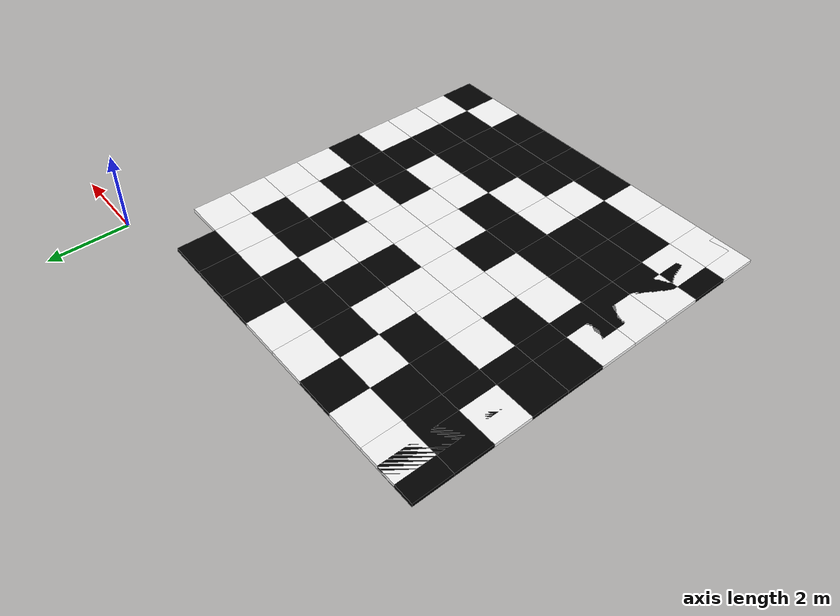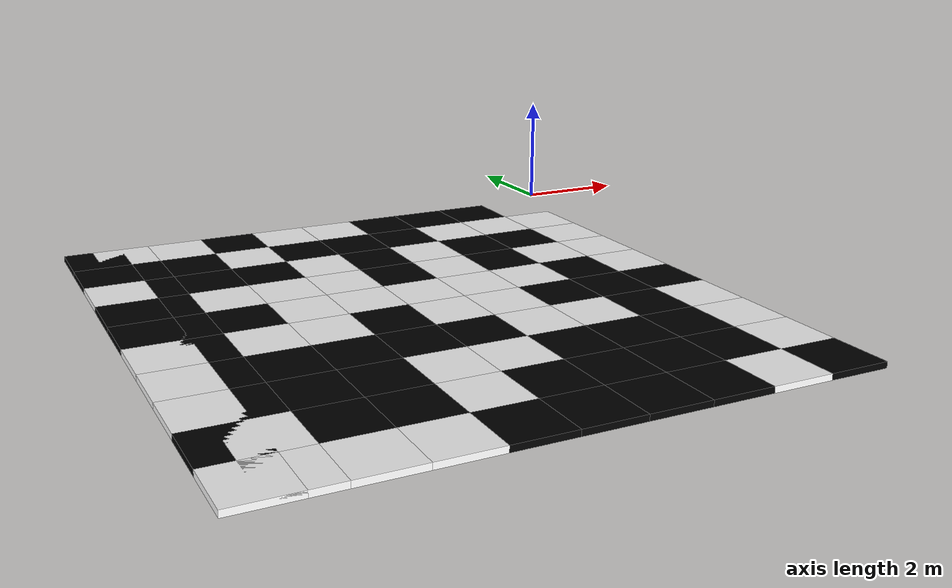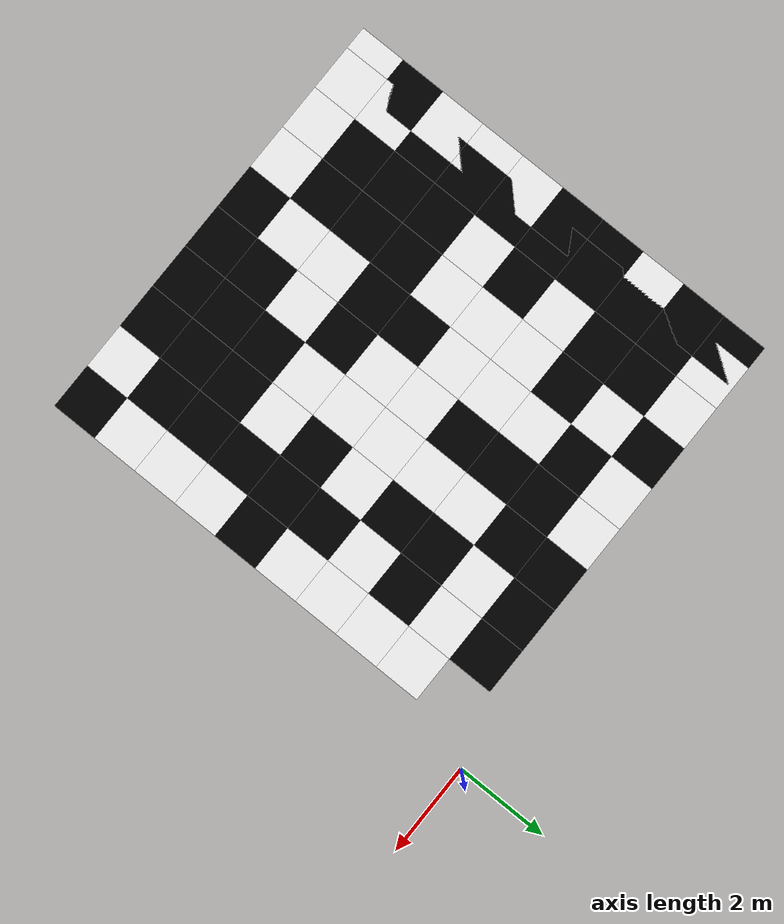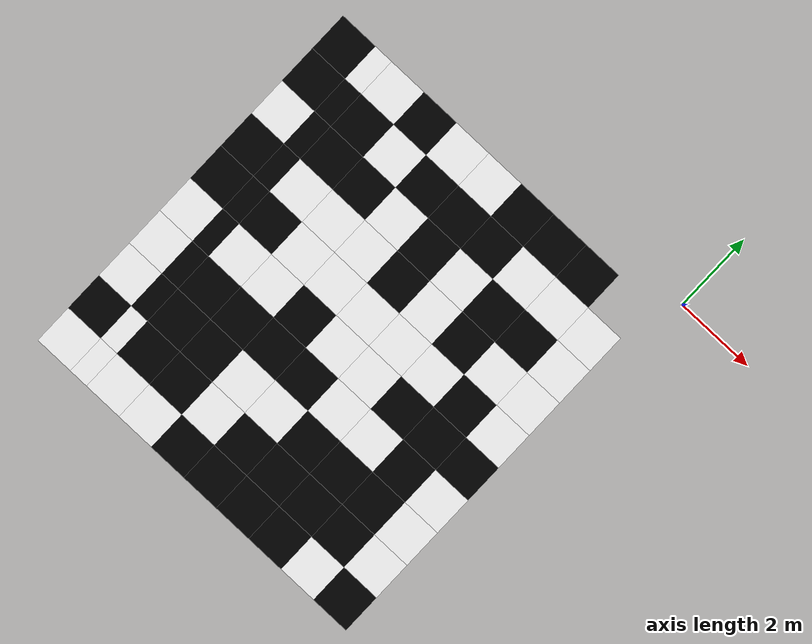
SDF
<sdf version="1.8">
 <world name="collective_perception_task_world">
  <model name="tile_-10_-10">
   <is_static>true</is_static>
   <pose>-9.5 -10 0 0 0 0</pose>
   <link name="link">
    <collision name="collision"><geometry><box><size>1 1 0.1</size></box></geometry></collision>
    <visual name="visual">
     <geometry><box><size>1 1 0.1</size></box></geometry>
     <material><ambient>1 1 1 1</ambient><diffuse>1 1 1 1</diffuse></material>
    </visual>
   </link>
  </model>
  <model name="tile_-10_-9">
   <is_static>true</is_static>
   <pose>-9.5 -9 0 0 0 0</pose>
   <link name="link">
    <collision name="collision"><geometry><box><size>1 1 0.1</size></box></geometry></collision>
    <visual name="visual">
     <geometry><box><size>1 1 0.1</size></box></geometry>
     <material><ambient>0 0 0 1</ambient><diffuse>0 0 0 1</diffuse></material>
    </visual>
   </link>
  </model>
  <model name="tile_-10_-8">
   <is_static>true</is_static>
   <pose>-9.5 -8 0 0 0 0</pose>
   <link name="link">
    <collision name="collision"><geometry><box><size>1 1 0.1</size></box></geometry></collision>
    <visual name="visual">
     <geometry><box><size>1 1 0.1</size></box></geometry>
     <material><ambient>1 1 1 1</ambient><diffuse>1 1 1 1</diffuse></material>
    </visual>
   </link>
  </model>
  <model name="tile_-10_-7">
   <is_static>true</is_static>
   <pose>-9.5 -7 0 0 0 0</pose>
   <link name="link">
    <collision name="collision"><geometry><box><size>1 1 0.1</size></box></geometry></collision>
    <visual name="visual">
     <geometry><box><size>1 1 0.1</size></box></geometry>
     <material><ambient>1 1 1 1</ambient><diffuse>1 1 1 1</diffuse></material>
    </visual>
   </link>
  </model>
  <model name="tile_-10_-6">
   <is_static>true</is_static>
   <pose>-9.5 -6 0 0 0 0</pose>
   <link name="link">
    <collision name="collision"><geometry><box><size>1 1 0.1</size></box></geometry></collision>
    <visual name="visual">
     <geometry><box><size>1 1 0.1</size></box></geometry>
     <material><ambient>1 1 1 1</ambient><diffuse>1 1 1 1</diffuse></material>
    </visual>
   </link>
  </model>
  <model name="tile_-10_-5">
   <is_static>true</is_static>
   <pose>-9.5 -5 0 0 0 0</pose>
   <link name="link">
    <collision name="collision"><geometry><box><size>1 1 0.1</size></box></geometry></collision>
    <visual name="visual">
     <geometry><box><size>1 1 0.1</size></box></geometry>
     <material><ambient>0 0 0 1</ambient><diffuse>0 0 0 1</diffuse></material>
    </visual>
   </link>
  </model>
  <model name="tile_-10_-4">
   <is_static>true</is_static>
   <pose>-9.5 -4 0 0 0 0</pose>
   <link name="link">
    <collision name="collision"><geometry><box><size>1 1 0.1</size></box></geometry></collision>
    <visual name="visual">
     <geometry><box><size>1 1 0.1</size></box></geometry>
     <material><ambient>0 0 0 1</ambient><diffuse>0 0 0 1</diffuse></material>
    </visual>
   </link>
  </model>
  <model name="tile_-10_-3">
   <is_static>true</is_static>
   <pose>-9.5 -3 0 0 0 0</pose>
   <link name="link">
    <collision name="collision"><geometry><box><size>1 1 0.1</size></box></geometry></collision>
    <visual name="visual">
     <geometry><box><size>1 1 0.1</size></box></geometry>
     <material><ambient>1 1 1 1</ambient><diffuse>1 1 1 1</diffuse></material>
    </visual>
   </link>
  </model>
  <model name="tile_-10_-2">
   <is_static>true</is_static>
   <pose>-9.5 -2 0 0 0 0</pose>
   <link name="link">
    <collision name="collision"><geometry><box><size>1 1 0.1</size></box></geometry></collision>
    <visual name="visual">
     <geometry><box><size>1 1 0.1</size></box></geometry>
     <material><ambient>0 0 0 1</ambient><diffuse>0 0 0 1</diffuse></material>
    </visual>
   </link>
  </model>
  <model name="tile_-10_-1">
   <is_static>true</is_static>
   <pose>-9.5 -1 0 0 0 0</pose>
   <link name="link">
    <collision name="collision"><geometry><box><size>1 1 0.1</size></box></geometry></collision>
    <visual name="visual">
     <geometry><box><size>1 1 0.1</size></box></geometry>
     <material><ambient>0 0 0 1</ambient><diffuse>0 0 0 1</diffuse></material>
    </visual>
   </link>
  </model>
  <model name="tile_-9_-10">
   <is_static>true</is_static>
   <pose>-9 -10 0 0 0 0</pose>
   <link name="link">
    <collision name="collision"><geometry><box><size>1 1 0.1</size></box></geometry></collision>
    <visual name="visual">
     <geometry><box><size>1 1 0.1</size></box></geometry>
     <material><ambient>1 1 1 1</ambient><diffuse>1 1 1 1</diffuse></material>
    </visual>
   </link>
  </model>
  <model name="tile_-9_-9">
   <is_static>true</is_static>
   <pose>-9 -9 0 0 0 0</pose>
   <link name="link">
    <collision name="collision"><geometry><box><size>1 1 0.1</size></box></geometry></collision>
    <visual name="visual">
     <geometry><box><size>1 1 0.1</size></box></geometry>
     <material><ambient>1 1 1 1</ambient><diffuse>1 1 1 1</diffuse></material>
    </visual>
   </link>
  </model>
  <model name="tile_-9_-8">
   <is_static>true</is_static>
   <pose>-9 -8 0 0 0 0</pose>
   <link name="link">
    <collision name="collision"><geometry><box><size>1 1 0.1</size></box></geometry></collision>
    <visual name="visual">
     <geometry><box><size>1 1 0.1</size></box></geometry>
     <material><ambient>0 0 0 1</ambient><diffuse>0 0 0 1</diffuse></material>
    </visual>
   </link>
  </model>
  <model name="tile_-9_-7">
   <is_static>true</is_static>
   <pose>-9 -7 0 0 0 0</pose>
   <link name="link">
    <collision name="collision"><geometry><box><size>1 1 0.1</size></box></geometry></collision>
    <visual name="visual">
     <geometry><box><size>1 1 0.1</size></box></geometry>
     <material><ambient>0 0 0 1</ambient><diffuse>0 0 0 1</diffuse></material>
    </visual>
   </link>
  </model>
  <model name="tile_-9_-6">
   <is_static>true</is_static>
   <pose>-9 -6 0 0 0 0</pose>
   <link name="link">
    <collision name="collision"><geometry><box><size>1 1 0.1</size></box></geometry></collision>
    <visual name="visual">
     <geometry><box><size>1 1 0.1</size></box></geometry>
     <material><ambient>0 0 0 1</ambient><diffuse>0 0 0 1</diffuse></material>
    </visual>
   </link>
  </model>
  <model name="tile_-9_-5">
   <is_static>true</is_static>
   <pose>-9 -5 0 0 0 0</pose>
   <link name="link">
    <collision name="collision"><geometry><box><size>1 1 0.1</size></box></geometry></collision>
    <visual name="visual">
     <geometry><box><size>1 1 0.1</size></box></geometry>
     <material><ambient>0 0 0 1</ambient><diffuse>0 0 0 1</diffuse></material>
    </visual>
   </link>
  </model>
  <model name="tile_-9_-4">
   <is_static>true</is_static>
   <pose>-9 -4 0 0 0 0</pose>
   <link name="link">
    <collision name="collision"><geometry><box><size>1 1 0.1</size></box></geometry></collision>
    <visual name="visual">
     <geometry><box><size>1 1 0.1</size></box></geometry>
     <material><ambient>0 0 0 1</ambient><diffuse>0 0 0 1</diffuse></material>
    </visual>
   </link>
  </model>
  <model name="tile_-9_-3">
   <is_static>true</is_static>
   <pose>-9 -3 0 0 0 0</pose>
   <link name="link">
    <collision name="collision"><geometry><box><size>1 1 0.1</size></box></geometry></collision>
    <visual name="visual">
     <geometry><box><size>1 1 0.1</size></box></geometry>
     <material><ambient>0 0 0 1</ambient><diffuse>0 0 0 1</diffuse></material>
    </visual>
   </link>
  </model>
  <model name="tile_-9_-2">
   <is_static>true</is_static>
   <pose>-9 -2 0 0 0 0</pose>
   <link name="link">
    <collision name="collision"><geometry><box><size>1 1 0.1</size></box></geometry></collision>
    <visual name="visual">
     <geometry><box><size>1 1 0.1</size></box></geometry>
     <material><ambient>0 0 0 1</ambient><diffuse>0 0 0 1</diffuse></material>
    </visual>
   </link>
  </model>
  <model name="tile_-9_-1">
   <is_static>true</is_static>
   <pose>-9 -1 0 0 0 0</pose>
   <link name="link">
    <collision name="collision"><geometry><box><size>1 1 0.1</size></box></geometry></collision>
    <visual name="visual">
     <geometry><box><size>1 1 0.1</size></box></geometry>
     <material><ambient>1 1 1 1</ambient><diffuse>1 1 1 1</diffuse></material>
    </visual>
   </link>
  </model>
  <model name="tile_-8_-10">
   <is_static>true</is_static>
   <pose>-8 -10 0 0 0 0</pose>
   <link name="link">
    <collision name="collision"><geometry><box><size>1 1 0.1</size></box></geometry></collision>
    <visual name="visual">
     <geometry><box><size>1 1 0.1</size></box></geometry>
     <material><ambient>1 1 1 1</ambient><diffuse>1 1 1 1</diffuse></material>
    </visual>
   </link>
  </model>
  <model name="tile_-8_-9">
   <is_static>true</is_static>
   <pose>-8 -9 0 0 0 0</pose>
   <link name="link">
    <collision name="collision"><geometry><box><size>1 1 0.1</size></box></geometry></collision>
    <visual name="visual">
     <geometry><box><size>1 1 0.1</size></box></geometry>
     <material><ambient>0 0 0 1</ambient><diffuse>0 0 0 1</diffuse></material>
    </visual>
   </link>
  </model>
  <model name="tile_-8_-8">
   <is_static>true</is_static>
   <pose>-8 -8 0 0 0 0</pose>
   <link name="link">
    <collision name="collision"><geometry><box><size>1 1 0.1</size></box></geometry></collision>
    <visual name="visual">
     <geometry><box><size>1 1 0.1</size></box></geometry>
     <material><ambient>0 0 0 1</ambient><diffuse>0 0 0 1</diffuse></material>
    </visual>
   </link>
  </model>
  <model name="tile_-8_-7">
   <is_static>true</is_static>
   <pose>-8 -7 0 0 0 0</pose>
   <link name="link">
    <collision name="collision"><geometry><box><size>1 1 0.1</size></box></geometry></collision>
    <visual name="visual">
     <geometry><box><size>1 1 0.1</size></box></geometry>
     <material><ambient>0 0 0 1</ambient><diffuse>0 0 0 1</diffuse></material>
    </visual>
   </link>
  </model>
  <model name="tile_-8_-6">
   <is_static>true</is_static>
   <pose>-8 -6 0 0 0 0</pose>
   <link name="link">
    <collision name="collision"><geometry><box><size>1 1 0.1</size></box></geometry></collision>
    <visual name="visual">
     <geometry><box><size>1 1 0.1</size></box></geometry>
     <material><ambient>1 1 1 1</ambient><diffuse>1 1 1 1</diffuse></material>
    </visual>
   </link>
  </model>
  <model name="tile_-8_-5">
   <is_static>true</is_static>
   <pose>-8 -5 0 0 0 0</pose>
   <link name="link">
    <collision name="collision"><geometry><box><size>1 1 0.1</size></box></geometry></collision>
    <visual name="visual">
     <geometry><box><size>1 1 0.1</size></box></geometry>
     <material><ambient>0 0 0 1</ambient><diffuse>0 0 0 1</diffuse></material>
    </visual>
   </link>
  </model>
  <model name="tile_-8_-4">
   <is_static>true</is_static>
   <pose>-8 -4 0 0 0 0</pose>
   <link name="link">
    <collision name="collision"><geometry><box><size>1 1 0.1</size></box></geometry></collision>
    <visual name="visual">
     <geometry><box><size>1 1 0.1</size></box></geometry>
     <material><ambient>1 1 1 1</ambient><diffuse>1 1 1 1</diffuse></material>
    </visual>
   </link>
  </model>
  <model name="tile_-8_-3">
   <is_static>true</is_static>
   <pose>-8 -3 0 0 0 0</pose>
   <link name="link">
    <collision name="collision"><geometry><box><size>1 1 0.1</size></box></geometry></collision>
    <visual name="visual">
     <geometry><box><size>1 1 0.1</size></box></geometry>
     <material><ambient>0 0 0 1</ambient><diffuse>0 0 0 1</diffuse></material>
    </visual>
   </link>
  </model>
  <model name="tile_-8_-2">
   <is_static>true</is_static>
   <pose>-8 -2 0 0 0 0</pose>
   <link name="link">
    <collision name="collision"><geometry><box><size>1 1 0.1</size></box></geometry></collision>
    <visual name="visual">
     <geometry><box><size>1 1 0.1</size></box></geometry>
     <material><ambient>0 0 0 1</ambient><diffuse>0 0 0 1</diffuse></material>
    </visual>
   </link>
  </model>
  <model name="tile_-8_-1">
   <is_static>true</is_static>
   <pose>-8 -1 0 0 0 0</pose>
   <link name="link">
    <collision name="collision"><geometry><box><size>1 1 0.1</size></box></geometry></collision>
    <visual name="visual">
     <geometry><box><size>1 1 0.1</size></box></geometry>
     <material><ambient>1 1 1 1</ambient><diffuse>1 1 1 1</diffuse></material>
    </visual>
   </link>
  </model>
  <model name="tile_-7_-10">
   <is_static>true</is_static>
   <pose>-7 -10 0 0 0 0</pose>
   <link name="link">
    <collision name="collision"><geometry><box><size>1 1 0.1</size></box></geometry></collision>
    <visual name="visual">
     <geometry><box><size>1 1 0.1</size></box></geometry>
     <material><ambient>1 1 1 1</ambient><diffuse>1 1 1 1</diffuse></material>
    </visual>
   </link>
  </model>
  <model name="tile_-7_-9">
   <is_static>true</is_static>
   <pose>-7 -9 0 0 0 0</pose>
   <link name="link">
    <collision name="collision"><geometry><box><size>1 1 0.1</size></box></geometry></collision>
    <visual name="visual">
     <geometry><box><size>1 1 0.1</size></box></geometry>
     <material><ambient>0 0 0 1</ambient><diffuse>0 0 0 1</diffuse></material>
    </visual>
   </link>
  </model>
  <model name="tile_-7_-8">
   <is_static>true</is_static>
   <pose>-7 -8 0 0 0 0</pose>
   <link name="link">
    <collision name="collision"><geometry><box><size>1 1 0.1</size></box></geometry></collision>
    <visual name="visual">
     <geometry><box><size>1 1 0.1</size></box></geometry>
     <material><ambient>0 0 0 1</ambient><diffuse>0 0 0 1</diffuse></material>
    </visual>
   </link>
  </model>
  <model name="tile_-7_-7">
   <is_static>true</is_static>
   <pose>-7 -7 0 0 0 0</pose>
   <link name="link">
    <collision name="collision"><geometry><box><size>1 1 0.1</size></box></geometry></collision>
    <visual name="visual">
     <geometry><box><size>1 1 0.1</size></box></geometry>
     <material><ambient>0 0 0 1</ambient><diffuse>0 0 0 1</diffuse></material>
    </visual>
   </link>
  </model>
  <model name="tile_-7_-6">
   <is_static>true</is_static>
   <pose>-7 -6 0 0 0 0</pose>
   <link name="link">
    <collision name="collision"><geometry><box><size>1 1 0.1</size></box></geometry></collision>
    <visual name="visual">
     <geometry><box><size>1 1 0.1</size></box></geometry>
     <material><ambient>1 1 1 1</ambient><diffuse>1 1 1 1</diffuse></material>
    </visual>
   </link>
  </model>
  <model name="tile_-7_-5">
   <is_static>true</is_static>
   <pose>-7 -5 0 0 0 0</pose>
   <link name="link">
    <collision name="collision"><geometry><box><size>1 1 0.1</size></box></geometry></collision>
    <visual name="visual">
     <geometry><box><size>1 1 0.1</size></box></geometry>
     <material><ambient>1 1 1 1</ambient><diffuse>1 1 1 1</diffuse></material>
    </visual>
   </link>
  </model>
  <model name="tile_-7_-4">
   <is_static>true</is_static>
   <pose>-7 -4 0 0 0 0</pose>
   <link name="link">
    <collision name="collision"><geometry><box><size>1 1 0.1</size></box></geometry></collision>
    <visual name="visual">
     <geometry><box><size>1 1 0.1</size></box></geometry>
     <material><ambient>1 1 1 1</ambient><diffuse>1 1 1 1</diffuse></material>
    </visual>
   </link>
  </model>
  <model name="tile_-7_-3">
   <is_static>true</is_static>
   <pose>-7 -3 0 0 0 0</pose>
   <link name="link">
    <collision name="collision"><geometry><box><size>1 1 0.1</size></box></geometry></collision>
    <visual name="visual">
     <geometry><box><size>1 1 0.1</size></box></geometry>
     <material><ambient>0 0 0 1</ambient><diffuse>0 0 0 1</diffuse></material>
    </visual>
   </link>
  </model>
  <model name="tile_-7_-2">
   <is_static>true</is_static>
   <pose>-7 -2 0 0 0 0</pose>
   <link name="link">
    <collision name="collision"><geometry><box><size>1 1 0.1</size></box></geometry></collision>
    <visual name="visual">
     <geometry><box><size>1 1 0.1</size></box></geometry>
     <material><ambient>1 1 1 1</ambient><diffuse>1 1 1 1</diffuse></material>
    </visual>
   </link>
  </model>
  <model name="tile_-7_-1">
   <is_static>true</is_static>
   <pose>-7 -1 0 0 0 0</pose>
   <link name="link">
    <collision name="collision"><geometry><box><size>1 1 0.1</size></box></geometry></collision>
    <visual name="visual">
     <geometry><box><size>1 1 0.1</size></box></geometry>
     <material><ambient>0 0 0 1</ambient><diffuse>0 0 0 1</diffuse></material>
    </visual>
   </link>
  </model>
  <model name="tile_-6_-10">
   <is_static>true</is_static>
   <pose>-6 -10 0 0 0 0</pose>
   <link name="link">
    <collision name="collision"><geometry><box><size>1 1 0.1</size></box></geometry></collision>
    <visual name="visual">
     <geometry><box><size>1 1 0.1</size></box></geometry>
     <material><ambient>0 0 0 1</ambient><diffuse>0 0 0 1</diffuse></material>
    </visual>
   </link>
  </model>
  <model name="tile_-6_-9">
   <is_static>true</is_static>
   <pose>-6 -9 0 0 0 0</pose>
   <link name="link">
    <collision name="collision"><geometry><box><size>1 1 0.1</size></box></geometry></collision>
    <visual name="visual">
     <geometry><box><size>1 1 0.1</size></box></geometry>
     <material><ambient>1 1 1 1</ambient><diffuse>1 1 1 1</diffuse></material>
    </visual>
   </link>
  </model>
  <model name="tile_-6_-8">
   <is_static>true</is_static>
   <pose>-6 -8 0 0 0 0</pose>
   <link name="link">
    <collision name="collision"><geometry><box><size>1 1 0.1</size></box></geometry></collision>
    <visual name="visual">
     <geometry><box><size>1 1 0.1</size></box></geometry>
     <material><ambient>1 1 1 1</ambient><diffuse>1 1 1 1</diffuse></material>
    </visual>
   </link>
  </model>
  <model name="tile_-6_-7">
   <is_static>true</is_static>
   <pose>-6 -7 0 0 0 0</pose>
   <link name="link">
    <collision name="collision"><geometry><box><size>1 1 0.1</size></box></geometry></collision>
    <visual name="visual">
     <geometry><box><size>1 1 0.1</size></box></geometry>
     <material><ambient>0 0 0 1</ambient><diffuse>0 0 0 1</diffuse></material>
    </visual>
   </link>
  </model>
  <model name="tile_-6_-6">
   <is_static>true</is_static>
   <pose>-6 -6 0 0 0 0</pose>
   <link name="link">
    <collision name="collision"><geometry><box><size>1 1 0.1</size></box></geometry></collision>
    <visual name="visual">
     <geometry><box><size>1 1 0.1</size></box></geometry>
     <material><ambient>0 0 0 1</ambient><diffuse>0 0 0 1</diffuse></material>
    </visual>
   </link>
  </model>
  <model name="tile_-6_-5">
   <is_static>true</is_static>
   <pose>-6 -5 0 0 0 0</pose>
   <link name="link">
    <collision name="collision"><geometry><box><size>1 1 0.1</size></box></geometry></collision>
    <visual name="visual">
     <geometry><box><size>1 1 0.1</size></box></geometry>
     <material><ambient>1 1 1 1</ambient><diffuse>1 1 1 1</diffuse></material>
    </visual>
   </link>
  </model>
  <model name="tile_-6_-4">
   <is_static>true</is_static>
   <pose>-6 -4 0 0 0 0</pose>
   <link name="link">
    <collision name="collision"><geometry><box><size>1 1 0.1</size></box></geometry></collision>
    <visual name="visual">
     <geometry><box><size>1 1 0.1</size></box></geometry>
     <material><ambient>1 1 1 1</ambient><diffuse>1 1 1 1</diffuse></material>
    </visual>
   </link>
  </model>
  <model name="tile_-6_-3">
   <is_static>true</is_static>
   <pose>-6 -3 0 0 0 0</pose>
   <link name="link">
    <collision name="collision"><geometry><box><size>1 1 0.1</size></box></geometry></collision>
    <visual name="visual">
     <geometry><box><size>1 1 0.1</size></box></geometry>
     <material><ambient>1 1 1 1</ambient><diffuse>1 1 1 1</diffuse></material>
    </visual>
   </link>
  </model>
  <model name="tile_-6_-2">
   <is_static>true</is_static>
   <pose>-6 -2 0 0 0 0</pose>
   <link name="link">
    <collision name="collision"><geometry><box><size>1 1 0.1</size></box></geometry></collision>
    <visual name="visual">
     <geometry><box><size>1 1 0.1</size></box></geometry>
     <material><ambient>0 0 0 1</ambient><diffuse>0 0 0 1</diffuse></material>
    </visual>
   </link>
  </model>
  <model name="tile_-6_-1">
   <is_static>true</is_static>
   <pose>-6 -1 0 0 0 0</pose>
   <link name="link">
    <collision name="collision"><geometry><box><size>1 1 0.1</size></box></geometry></collision>
    <visual name="visual">
     <geometry><box><size>1 1 0.1</size></box></geometry>
     <material><ambient>1 1 1 1</ambient><diffuse>1 1 1 1</diffuse></material>
    </visual>
   </link>
  </model>
  <model name="tile_-5_-10">
   <is_static>true</is_static>
   <pose>-5 -10 0 0 0 0</pose>
   <link name="link">
    <collision name="collision"><geometry><box><size>1 1 0.1</size></box></geometry></collision>
    <visual name="visual">
     <geometry><box><size>1 1 0.1</size></box></geometry>
     <material><ambient>0 0 0 1</ambient><diffuse>0 0 0 1</diffuse></material>
    </visual>
   </link>
  </model>
  <model name="tile_-5_-9">
   <is_static>true</is_static>
   <pose>-5 -9 0 0 0 0</pose>
   <link name="link">
    <collision name="collision"><geometry><box><size>1 1 0.1</size></box></geometry></collision>
    <visual name="visual">
     <geometry><box><size>1 1 0.1</size></box></geometry>
     <material><ambient>0 0 0 1</ambient><diffuse>0 0 0 1</diffuse></material>
    </visual>
   </link>
  </model>
  <model name="tile_-5_-8">
   <is_static>true</is_static>
   <pose>-5 -8 0 0 0 0</pose>
   <link name="link">
    <collision name="collision"><geometry><box><size>1 1 0.1</size></box></geometry></collision>
    <visual name="visual">
     <geometry><box><size>1 1 0.1</size></box></geometry>
     <material><ambient>1 1 1 1</ambient><diffuse>1 1 1 1</diffuse></material>
    </visual>
   </link>
  </model>
  <model name="tile_-5_-7">
   <is_static>true</is_static>
   <pose>-5 -7 0 0 0 0</pose>
   <link name="link">
    <collision name="collision"><geometry><box><size>1 1 0.1</size></box></geometry></collision>
    <visual name="visual">
     <geometry><box><size>1 1 0.1</size></box></geometry>
     <material><ambient>0 0 0 1</ambient><diffuse>0 0 0 1</diffuse></material>
    </visual>
   </link>
  </model>
  <model name="tile_-5_-6">
   <is_static>true</is_static>
   <pose>-5 -6 0 0 0 0</pose>
   <link name="link">
    <collision name="collision"><geometry><box><size>1 1 0.1</size></box></geometry></collision>
    <visual name="visual">
     <geometry><box><size>1 1 0.1</size></box></geometry>
     <material><ambient>1 1 1 1</ambient><diffuse>1 1 1 1</diffuse></material>
    </visual>
   </link>
  </model>
  <model name="tile_-5_-5">
   <is_static>true</is_static>
   <pose>-5 -5 0 0 0 0</pose>
   <link name="link">
    <collision name="collision"><geometry><box><size>1 1 0.1</size></box></geometry></collision>
    <visual name="visual">
     <geometry><box><size>1 1 0.1</size></box></geometry>
     <material><ambient>1 1 1 1</ambient><diffuse>1 1 1 1</diffuse></material>
    </visual>
   </link>
  </model>
  <model name="tile_-5_-4">
   <is_static>true</is_static>
   <pose>-5 -4 0 0 0 0</pose>
   <link name="link">
    <collision name="collision"><geometry><box><size>1 1 0.1</size></box></geometry></collision>
    <visual name="visual">
     <geometry><box><size>1 1 0.1</size></box></geometry>
     <material><ambient>0 0 0 1</ambient><diffuse>0 0 0 1</diffuse></material>
    </visual>
   </link>
  </model>
  <model name="tile_-5_-3">
   <is_static>true</is_static>
   <pose>-5 -3 0 0 0 0</pose>
   <link name="link">
    <collision name="collision"><geometry><box><size>1 1 0.1</size></box></geometry></collision>
    <visual name="visual">
     <geometry><box><size>1 1 0.1</size></box></geometry>
     <material><ambient>0 0 0 1</ambient><diffuse>0 0 0 1</diffuse></material>
    </visual>
   </link>
  </model>
  <model name="tile_-5_-2">
   <is_static>true</is_static>
   <pose>-5 -2 0 0 0 0</pose>
   <link name="link">
    <collision name="collision"><geometry><box><size>1 1 0.1</size></box></geometry></collision>
    <visual name="visual">
     <geometry><box><size>1 1 0.1</size></box></geometry>
     <material><ambient>0 0 0 1</ambient><diffuse>0 0 0 1</diffuse></material>
    </visual>
   </link>
  </model>
  <model name="tile_-5_-1">
   <is_static>true</is_static>
   <pose>-5 -1 0 0 0 0</pose>
   <link name="link">
    <collision name="collision"><geometry><box><size>1 1 0.1</size></box></geometry></collision>
    <visual name="visual">
     <geometry><box><size>1 1 0.1</size></box></geometry>
     <material><ambient>1 1 1 1</ambient><diffuse>1 1 1 1</diffuse></material>
    </visual>
   </link>
  </model>
  <model name="tile_-4_-10">
   <is_static>true</is_static>
   <pose>-4 -10 0 0 0 0</pose>
   <link name="link">
    <collision name="collision"><geometry><box><size>1 1 0.1</size></box></geometry></collision>
    <visual name="visual">
     <geometry><box><size>1 1 0.1</size></box></geometry>
     <material><ambient>0 0 0 1</ambient><diffuse>0 0 0 1</diffuse></material>
    </visual>
   </link>
  </model>
  <model name="tile_-4_-9">
   <is_static>true</is_static>
   <pose>-4 -9 0 0 0 0</pose>
   <link name="link">
    <collision name="collision"><geometry><box><size>1 1 0.1</size></box></geometry></collision>
    <visual name="visual">
     <geometry><box><size>1 1 0.1</size></box></geometry>
     <material><ambient>0 0 0 1</ambient><diffuse>0 0 0 1</diffuse></material>
    </visual>
   </link>
  </model>
  <model name="tile_-4_-8">
   <is_static>true</is_static>
   <pose>-4 -8 0 0 0 0</pose>
   <link name="link">
    <collision name="collision"><geometry><box><size>1 1 0.1</size></box></geometry></collision>
    <visual name="visual">
     <geometry><box><size>1 1 0.1</size></box></geometry>
     <material><ambient>0 0 0 1</ambient><diffuse>0 0 0 1</diffuse></material>
    </visual>
   </link>
  </model>
  <model name="tile_-4_-7">
   <is_static>true</is_static>
   <pose>-4 -7 0 0 0 0</pose>
   <link name="link">
    <collision name="collision"><geometry><box><size>1 1 0.1</size></box></geometry></collision>
    <visual name="visual">
     <geometry><box><size>1 1 0.1</size></box></geometry>
     <material><ambient>1 1 1 1</ambient><diffuse>1 1 1 1</diffuse></material>
    </visual>
   </link>
  </model>
  <model name="tile_-4_-6">
   <is_static>true</is_static>
   <pose>-4 -6 0 0 0 0</pose>
   <link name="link">
    <collision name="collision"><geometry><box><size>1 1 0.1</size></box></geometry></collision>
    <visual name="visual">
     <geometry><box><size>1 1 0.1</size></box></geometry>
     <material><ambient>1 1 1 1</ambient><diffuse>1 1 1 1</diffuse></material>
    </visual>
   </link>
  </model>
  <model name="tile_-4_-5">
   <is_static>true</is_static>
   <pose>-4 -5 0 0 0 0</pose>
   <link name="link">
    <collision name="collision"><geometry><box><size>1 1 0.1</size></box></geometry></collision>
    <visual name="visual">
     <geometry><box><size>1 1 0.1</size></box></geometry>
     <material><ambient>1 1 1 1</ambient><diffuse>1 1 1 1</diffuse></material>
    </visual>
   </link>
  </model>
  <model name="tile_-4_-4">
   <is_static>true</is_static>
   <pose>-4 -4 0 0 0 0</pose>
   <link name="link">
    <collision name="collision"><geometry><box><size>1 1 0.1</size></box></geometry></collision>
    <visual name="visual">
     <geometry><box><size>1 1 0.1</size></box></geometry>
     <material><ambient>1 1 1 1</ambient><diffuse>1 1 1 1</diffuse></material>
    </visual>
   </link>
  </model>
  <model name="tile_-4_-3">
   <is_static>true</is_static>
   <pose>-4 -3 0 0 0 0</pose>
   <link name="link">
    <collision name="collision"><geometry><box><size>1 1 0.1</size></box></geometry></collision>
    <visual name="visual">
     <geometry><box><size>1 1 0.1</size></box></geometry>
     <material><ambient>1 1 1 1</ambient><diffuse>1 1 1 1</diffuse></material>
    </visual>
   </link>
  </model>
  <model name="tile_-4_-2">
   <is_static>true</is_static>
   <pose>-4 -2 0 0 0 0</pose>
   <link name="link">
    <collision name="collision"><geometry><box><size>1 1 0.1</size></box></geometry></collision>
    <visual name="visual">
     <geometry><box><size>1 1 0.1</size></box></geometry>
     <material><ambient>0 0 0 1</ambient><diffuse>0 0 0 1</diffuse></material>
    </visual>
   </link>
  </model>
  <model name="tile_-4_-1">
   <is_static>true</is_static>
   <pose>-4 -1 0 0 0 0</pose>
   <link name="link">
    <collision name="collision"><geometry><box><size>1 1 0.1</size></box></geometry></collision>
    <visual name="visual">
     <geometry><box><size>1 1 0.1</size></box></geometry>
     <material><ambient>0 0 0 1</ambient><diffuse>0 0 0 1</diffuse></material>
    </visual>
   </link>
  </model>
  <model name="tile_-3_-10">
   <is_static>true</is_static>
   <pose>-3 -10 0 0 0 0</pose>
   <link name="link">
    <collision name="collision"><geometry><box><size>1 1 0.1</size></box></geometry></collision>
    <visual name="visual">
     <geometry><box><size>1 1 0.1</size></box></geometry>
     <material><ambient>0 0 0 1</ambient><diffuse>0 0 0 1</diffuse></material>
    </visual>
   </link>
  </model>
  <model name="tile_-3_-9">
   <is_static>true</is_static>
   <pose>-3 -9 0 0 0 0</pose>
   <link name="link">
    <collision name="collision"><geometry><box><size>1 1 0.1</size></box></geometry></collision>
    <visual name="visual">
     <geometry><box><size>1 1 0.1</size></box></geometry>
     <material><ambient>0 0 0 1</ambient><diffuse>0 0 0 1</diffuse></material>
    </visual>
   </link>
  </model>
  <model name="tile_-3_-8">
   <is_static>true</is_static>
   <pose>-3 -8 0 0 0 0</pose>
   <link name="link">
    <collision name="collision"><geometry><box><size>1 1 0.1</size></box></geometry></collision>
    <visual name="visual">
     <geometry><box><size>1 1 0.1</size></box></geometry>
     <material><ambient>0 0 0 1</ambient><diffuse>0 0 0 1</diffuse></material>
    </visual>
   </link>
  </model>
  <model name="tile_-3_-7">
   <is_static>true</is_static>
   <pose>-3 -7 0 0 0 0</pose>
   <link name="link">
    <collision name="collision"><geometry><box><size>1 1 0.1</size></box></geometry></collision>
    <visual name="visual">
     <geometry><box><size>1 1 0.1</size></box></geometry>
     <material><ambient>1 1 1 1</ambient><diffuse>1 1 1 1</diffuse></material>
    </visual>
   </link>
  </model>
  <model name="tile_-3_-6">
   <is_static>true</is_static>
   <pose>-3 -6 0 0 0 0</pose>
   <link name="link">
    <collision name="collision"><geometry><box><size>1 1 0.1</size></box></geometry></collision>
    <visual name="visual">
     <geometry><box><size>1 1 0.1</size></box></geometry>
     <material><ambient>0 0 0 1</ambient><diffuse>0 0 0 1</diffuse></material>
    </visual>
   </link>
  </model>
  <model name="tile_-3_-5">
   <is_static>true</is_static>
   <pose>-3 -5 0 0 0 0</pose>
   <link name="link">
    <collision name="collision"><geometry><box><size>1 1 0.1</size></box></geometry></collision>
    <visual name="visual">
     <geometry><box><size>1 1 0.1</size></box></geometry>
     <material><ambient>1 1 1 1</ambient><diffuse>1 1 1 1</diffuse></material>
    </visual>
   </link>
  </model>
  <model name="tile_-3_-4">
   <is_static>true</is_static>
   <pose>-3 -4 0 0 0 0</pose>
   <link name="link">
    <collision name="collision"><geometry><box><size>1 1 0.1</size></box></geometry></collision>
    <visual name="visual">
     <geometry><box><size>1 1 0.1</size></box></geometry>
     <material><ambient>0 0 0 1</ambient><diffuse>0 0 0 1</diffuse></material>
    </visual>
   </link>
  </model>
  <model name="tile_-3_-3">
   <is_static>true</is_static>
   <pose>-3 -3 0 0 0 0</pose>
   <link name="link">
    <collision name="collision"><geometry><box><size>1 1 0.1</size></box></geometry></collision>
    <visual name="visual">
     <geometry><box><size>1 1 0.1</size></box></geometry>
     <material><ambient>0 0 0 1</ambient><diffuse>0 0 0 1</diffuse></material>
    </visual>
   </link>
  </model>
  <model name="tile_-3_-2">
   <is_static>true</is_static>
   <pose>-3 -2 0 0 0 0</pose>
   <link name="link">
    <collision name="collision"><geometry><box><size>1 1 0.1</size></box></geometry></collision>
    <visual name="visual">
     <geometry><box><size>1 1 0.1</size></box></geometry>
     <material><ambient>1 1 1 1</ambient><diffuse>1 1 1 1</diffuse></material>
    </visual>
   </link>
  </model>
  <model name="tile_-3_-1">
   <is_static>true</is_static>
   <pose>-3 -1 0 0 0 0</pose>
   <link name="link">
    <collision name="collision"><geometry><box><size>1 1 0.1</size></box></geometry></collision>
    <visual name="visual">
     <geometry><box><size>1 1 0.1</size></box></geometry>
     <material><ambient>0 0 0 1</ambient><diffuse>0 0 0 1</diffuse></material>
    </visual>
   </link>
  </model>
  <model name="tile_-2_-10">
   <is_static>true</is_static>
   <pose>-2 -10 0 0 0 0</pose>
   <link name="link">
    <collision name="collision"><geometry><box><size>1 1 0.1</size></box></geometry></collision>
    <visual name="visual">
     <geometry><box><size>1 1 0.1</size></box></geometry>
     <material><ambient>1 1 1 1</ambient><diffuse>1 1 1 1</diffuse></material>
    </visual>
   </link>
  </model>
  <model name="tile_-2_-9">
   <is_static>true</is_static>
   <pose>-2 -9 0 0 0 0</pose>
   <link name="link">
    <collision name="collision"><geometry><box><size>1 1 0.1</size></box></geometry></collision>
    <visual name="visual">
     <geometry><box><size>1 1 0.1</size></box></geometry>
     <material><ambient>0 0 0 1</ambient><diffuse>0 0 0 1</diffuse></material>
    </visual>
   </link>
  </model>
  <model name="tile_-2_-8">
   <is_static>true</is_static>
   <pose>-2 -8 0 0 0 0</pose>
   <link name="link">
    <collision name="collision"><geometry><box><size>1 1 0.1</size></box></geometry></collision>
    <visual name="visual">
     <geometry><box><size>1 1 0.1</size></box></geometry>
     <material><ambient>0 0 0 1</ambient><diffuse>0 0 0 1</diffuse></material>
    </visual>
   </link>
  </model>
  <model name="tile_-2_-7">
   <is_static>true</is_static>
   <pose>-2 -7 0 0 0 0</pose>
   <link name="link">
    <collision name="collision"><geometry><box><size>1 1 0.1</size></box></geometry></collision>
    <visual name="visual">
     <geometry><box><size>1 1 0.1</size></box></geometry>
     <material><ambient>0 0 0 1</ambient><diffuse>0 0 0 1</diffuse></material>
    </visual>
   </link>
  </model>
  <model name="tile_-2_-6">
   <is_static>true</is_static>
   <pose>-2 -6 0 0 0 0</pose>
   <link name="link">
    <collision name="collision"><geometry><box><size>1 1 0.1</size></box></geometry></collision>
    <visual name="visual">
     <geometry><box><size>1 1 0.1</size></box></geometry>
     <material><ambient>0 0 0 1</ambient><diffuse>0 0 0 1</diffuse></material>
    </visual>
   </link>
  </model>
  <model name="tile_-2_-5">
   <is_static>true</is_static>
   <pose>-2 -5 0 0 0 0</pose>
   <link name="link">
    <collision name="collision"><geometry><box><size>1 1 0.1</size></box></geometry></collision>
    <visual name="visual">
     <geometry><box><size>1 1 0.1</size></box></geometry>
     <material><ambient>0 0 0 1</ambient><diffuse>0 0 0 1</diffuse></material>
    </visual>
   </link>
  </model>
  <model name="tile_-2_-4">
   <is_static>true</is_static>
   <pose>-2 -4 0 0 0 0</pose>
   <link name="link">
    <collision name="collision"><geometry><box><size>1 1 0.1</size></box></geometry></collision>
    <visual name="visual">
     <geometry><box><size>1 1 0.1</size></box></geometry>
     <material><ambient>1 1 1 1</ambient><diffuse>1 1 1 1</diffuse></material>
    </visual>
   </link>
  </model>
  <model name="tile_-2_-3">
   <is_static>true</is_static>
   <pose>-2 -3 0 0 0 0</pose>
   <link name="link">
    <collision name="collision"><geometry><box><size>1 1 0.1</size></box></geometry></collision>
    <visual name="visual">
     <geometry><box><size>1 1 0.1</size></box></geometry>
     <material><ambient>0 0 0 1</ambient><diffuse>0 0 0 1</diffuse></material>
    </visual>
   </link>
  </model>
  <model name="tile_-2_-2">
   <is_static>true</is_static>
   <pose>-2 -2 0 0 0 0</pose>
   <link name="link">
    <collision name="collision"><geometry><box><size>1 1 0.1</size></box></geometry></collision>
    <visual name="visual">
     <geometry><box><size>1 1 0.1</size></box></geometry>
     <material><ambient>1 1 1 1</ambient><diffuse>1 1 1 1</diffuse></material>
    </visual>
   </link>
  </model>
  <model name="tile_-2_-1">
   <is_static>true</is_static>
   <pose>-2 -1 0 0 0 0</pose>
   <link name="link">
    <collision name="collision"><geometry><box><size>1 1 0.1</size></box></geometry></collision>
    <visual name="visual">
     <geometry><box><size>1 1 0.1</size></box></geometry>
     <material><ambient>0 0 0 1</ambient><diffuse>0 0 0 1</diffuse></material>
    </visual>
   </link>
  </model>
  <model name="tile_-1_-10">
   <is_static>true</is_static>
   <pose>-1 -10 0 0 0 0</pose>
   <link name="link">
    <collision name="collision"><geometry><box><size>1 1 0.1</size></box></geometry></collision>
    <visual name="visual">
     <geometry><box><size>1 1 0.1</size></box></geometry>
     <material><ambient>0 0 0 1</ambient><diffuse>0 0 0 1</diffuse></material>
    </visual>
   </link>
  </model>
  <model name="tile_-1_-9">
   <is_static>true</is_static>
   <pose>-1 -9 0 0 0 0</pose>
   <link name="link">
    <collision name="collision"><geometry><box><size>1 1 0.1</size></box></geometry></collision>
    <visual name="visual">
     <geometry><box><size>1 1 0.1</size></box></geometry>
     <material><ambient>1 1 1 1</ambient><diffuse>1 1 1 1</diffuse></material>
    </visual>
   </link>
  </model>
  <model name="tile_-1_-8">
   <is_static>true</is_static>
   <pose>-1 -8 0 0 0 0</pose>
   <link name="link">
    <collision name="collision"><geometry><box><size>1 1 0.1</size></box></geometry></collision>
    <visual name="visual">
     <geometry><box><size>1 1 0.1</size></box></geometry>
     <material><ambient>1 1 1 1</ambient><diffuse>1 1 1 1</diffuse></material>
    </visual>
   </link>
  </model>
  <model name="tile_-1_-7">
   <is_static>true</is_static>
   <pose>-1 -7 0 0 0 0</pose>
   <link name="link">
    <collision name="collision"><geometry><box><size>1 1 0.1</size></box></geometry></collision>
    <visual name="visual">
     <geometry><box><size>1 1 0.1</size></box></geometry>
     <material><ambient>1 1 1 1</ambient><diffuse>1 1 1 1</diffuse></material>
    </visual>
   </link>
  </model>
  <model name="tile_-1_-6">
   <is_static>true</is_static>
   <pose>-1 -6 0 0 0 0</pose>
   <link name="link">
    <collision name="collision"><geometry><box><size>1 1 0.1</size></box></geometry></collision>
    <visual name="visual">
     <geometry><box><size>1 1 0.1</size></box></geometry>
     <material><ambient>0 0 0 1</ambient><diffuse>0 0 0 1</diffuse></material>
    </visual>
   </link>
  </model>
  <model name="tile_-1_-5">
   <is_static>true</is_static>
   <pose>-1 -5 0 0 0 0</pose>
   <link name="link">
    <collision name="collision"><geometry><box><size>1 1 0.1</size></box></geometry></collision>
    <visual name="visual">
     <geometry><box><size>1 1 0.1</size></box></geometry>
     <material><ambient>1 1 1 1</ambient><diffuse>1 1 1 1</diffuse></material>
    </visual>
   </link>
  </model>
  <model name="tile_-1_-4">
   <is_static>true</is_static>
   <pose>-1 -4 0 0 0 0</pose>
   <link name="link">
    <collision name="collision"><geometry><box><size>1 1 0.1</size></box></geometry></collision>
    <visual name="visual">
     <geometry><box><size>1 1 0.1</size></box></geometry>
     <material><ambient>1 1 1 1</ambient><diffuse>1 1 1 1</diffuse></material>
    </visual>
   </link>
  </model>
  <model name="tile_-1_-3">
   <is_static>true</is_static>
   <pose>-1 -3 0 0 0 0</pose>
   <link name="link">
    <collision name="collision"><geometry><box><size>1 1 0.1</size></box></geometry></collision>
    <visual name="visual">
     <geometry><box><size>1 1 0.1</size></box></geometry>
     <material><ambient>1 1 1 1</ambient><diffuse>1 1 1 1</diffuse></material>
    </visual>
   </link>
  </model>
  <model name="tile_-1_-2">
   <is_static>true</is_static>
   <pose>-1 -2 0 0 0 0</pose>
   <link name="link">
    <collision name="collision"><geometry><box><size>1 1 0.1</size></box></geometry></collision>
    <visual name="visual">
     <geometry><box><size>1 1 0.1</size></box></geometry>
     <material><ambient>1 1 1 1</ambient><diffuse>1 1 1 1</diffuse></material>
    </visual>
   </link>
  </model>
 </world>
</sdf>
